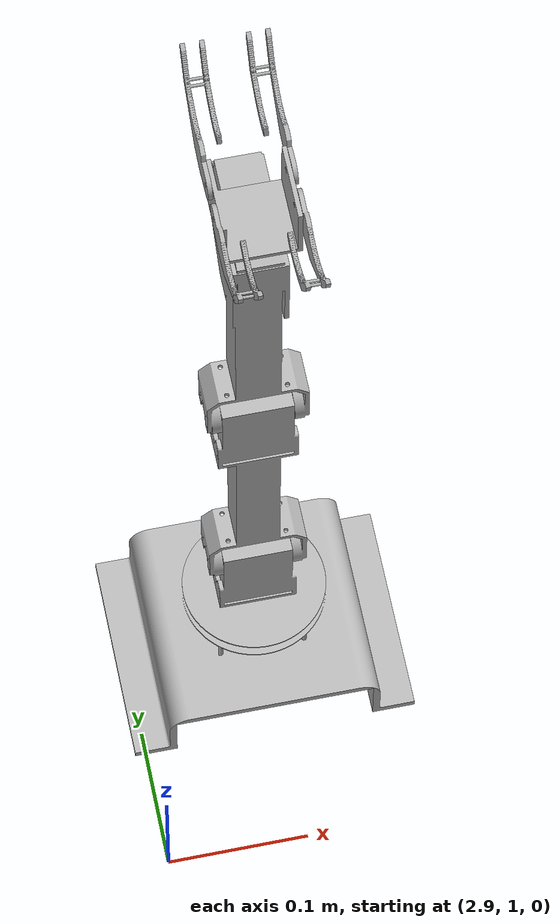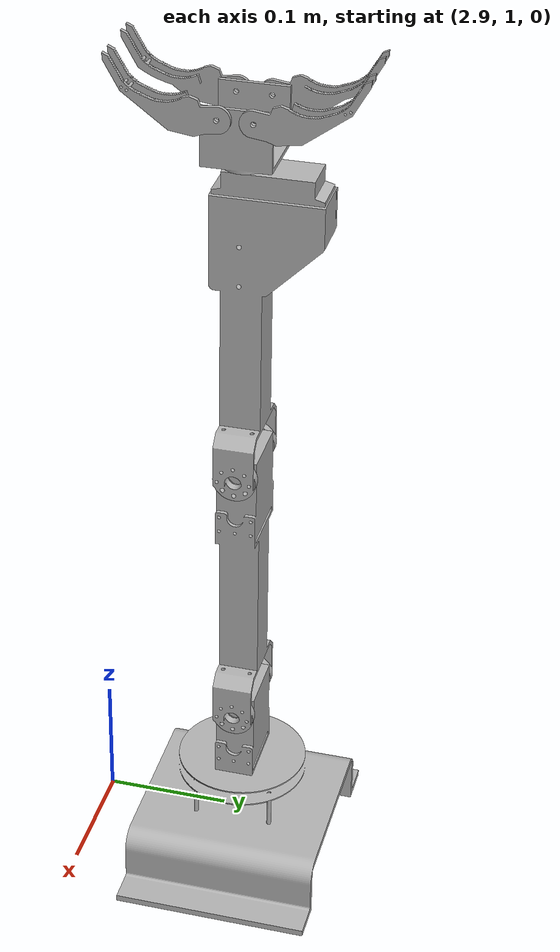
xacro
<?xml version="1.0" ?>
<robot name="robot_ver6" xmlns:xacro="http://www.ros.org/wiki/xacro">

<xacro:include filename="$(find myrobot_description)/urdf/materials.xacro" />
<xacro:include filename="$(find myrobot_description)/urdf/robot_ver6.trans" />
<xacro:include filename="$(find myrobot_description)/urdf/robot_ver6.gazebo" />
<link name="base_link">
  <inertial>
    <origin xyz="2.989375374043843 1.1395251464843752 0.07612872006595212" rpy="0 0 0"/>
    <mass value="1.6067306789990348"/>
    <inertia ixx="0.003521" iyy="0.006468" izz="0.008802" ixy="0.0" iyz="0.0" ixz="0.0"/>
  </inertial>
  <visual>
    <origin xyz="0 0 0" rpy="0 0 0"/>
    <geometry>
      <mesh filename="package://myrobot_description/meshes/base_link.stl" scale="0.001 0.001 0.001"/>
    </geometry>
    <material name="silver"/>
  </visual>
  <collision>
    <origin xyz="0 0 0" rpy="0 0 0"/>
    <geometry>
      <mesh filename="package://myrobot_description/meshes/base_link.stl" scale="0.001 0.001 0.001"/>
    </geometry>
  </collision>
</link>

<link name="link_1_1">
  <inertial>
    <origin xyz="2.079701455492966e-07 1.4648437618447474e-07 0.04484473463010137" rpy="0 0 0"/>
    <mass value="0.8724221516717876"/>
    <inertia ixx="0.000529" iyy="0.000636" izz="0.000308" ixy="-0.0" iyz="-0.0" ixz="-0.0"/>
  </inertial>
  <visual>
    <origin xyz="-2.989375 -1.139525 -0.122186" rpy="0 0 0"/>
    <geometry>
      <mesh filename="package://myrobot_description/meshes/link_1_1.stl" scale="0.001 0.001 0.001"/>
    </geometry>
    <material name="silver"/>
  </visual>
  <collision>
    <origin xyz="-2.989375 -1.139525 -0.122186" rpy="0 0 0"/>
    <geometry>
      <mesh filename="package://myrobot_description/meshes/link_1_1.stl" scale="0.001 0.001 0.001"/>
    </geometry>
  </collision>
</link>

<link name="link_2_1">
  <inertial>
    <origin xyz="2.938858791878829e-07 1.4648438195763447e-07 0.13199352594951688" rpy="0 0 0"/>
    <mass value="1.7894494256516804"/>
    <inertia ixx="0.007559" iyy="0.007762" izz="0.000473" ixy="0.0" iyz="0.0" ixz="0.0"/>
  </inertial>
  <visual>
    <origin xyz="-2.989375 -1.139525 -0.192528" rpy="0 0 0"/>
    <geometry>
      <mesh filename="package://myrobot_description/meshes/link_2_1.stl" scale="0.001 0.001 0.001"/>
    </geometry>
    <material name="silver"/>
  </visual>
  <collision>
    <origin xyz="-2.989375 -1.139525 -0.192528" rpy="0 0 0"/>
    <geometry>
      <mesh filename="package://myrobot_description/meshes/link_2_1.stl" scale="0.001 0.001 0.001"/>
    </geometry>
  </collision>
</link>

<link name="link_3_1">
  <inertial>
    <origin xyz="3.756619166850328e-07 0.008180253565493123 0.1490707247075182" rpy="0 0 0"/>
    <mass value="2.3011672222568587"/>
    <inertia ixx="0.010731" iyy="0.010238" izz="0.001122" ixy="-0.0" iyz="-0.001076" ixz="0.0"/>
  </inertial>
  <visual>
    <origin xyz="-2.989375 -1.139525 -0.40687" rpy="0 0 0"/>
    <geometry>
      <mesh filename="package://myrobot_description/meshes/link_3_1.stl" scale="0.001 0.001 0.001"/>
    </geometry>
    <material name="silver"/>
  </visual>
  <collision>
    <origin xyz="-2.989375 -1.139525 -0.40687" rpy="0 0 0"/>
    <geometry>
      <mesh filename="package://myrobot_description/meshes/link_3_1.stl" scale="0.001 0.001 0.001"/>
    </geometry>
  </collision>
</link>

<link name="link_4_1">
  <inertial>
    <origin xyz="3.7566188737514494e-07 1.4648436263975384e-07 0.018168573469312888" rpy="0 0 0"/>
    <mass value="0.1836674229836166"/>
    <inertia ixx="7.1e-05" iyy="0.000103" izz="0.0001" ixy="0.0" iyz="0.0" ixz="0.0"/>
  </inertial>
  <visual>
    <origin xyz="-2.989375 -1.138027 -0.64097" rpy="0 0 0"/>
    <geometry>
      <mesh filename="package://myrobot_description/meshes/link_4_1.stl" scale="0.001 0.001 0.001"/>
    </geometry>
    <material name="silver"/>
  </visual>
  <collision>
    <origin xyz="-2.989375 -1.138027 -0.64097" rpy="0 0 0"/>
    <geometry>
      <mesh filename="package://myrobot_description/meshes/link_4_1.stl" scale="0.001 0.001 0.001"/>
    </geometry>
  </collision>
</link>

<link name="grap_1_1">
  <inertial>
    <origin xyz="0.0011129810331476087 0.032768250662570164 0.005980783412323998" rpy="0 0 0"/>
    <mass value="0.04062678364093055"/>
    <inertia ixx="2.7e-05" iyy="6e-06" izz="2.3e-05" ixy="-2e-06" iyz="-7e-06" ixz="-1e-06"/>
  </inertial>
  <visual>
    <origin xyz="-2.964375 -1.150527 -0.68317" rpy="0 0 0"/>
    <geometry>
      <mesh filename="package://myrobot_description/meshes/grap_1_1.stl" scale="0.001 0.001 0.001"/>
    </geometry>
    <material name="silver"/>
  </visual>
  <collision>
    <origin xyz="-2.964375 -1.150527 -0.68317" rpy="0 0 0"/>
    <geometry>
      <mesh filename="package://myrobot_description/meshes/grap_1_1.stl" scale="0.001 0.001 0.001"/>
    </geometry>
  </collision>
</link>

<link name="grap_2_1">
  <inertial>
    <origin xyz="0.001112981033148941 -0.032767957693844885 0.0059807834123277726" rpy="0 0 0"/>
    <mass value="0.040626783640931016"/>
    <inertia ixx="2.7e-05" iyy="6e-06" izz="2.3e-05" ixy="2e-06" iyz="7e-06" ixz="-1e-06"/>
  </inertial>
  <visual>
    <origin xyz="-2.964375 -1.125527 -0.68317" rpy="0 0 0"/>
    <geometry>
      <mesh filename="package://myrobot_description/meshes/grap_2_1.stl" scale="0.001 0.001 0.001"/>
    </geometry>
    <material name="silver"/>
  </visual>
  <collision>
    <origin xyz="-2.964375 -1.125527 -0.68317" rpy="0 0 0"/>
    <geometry>
      <mesh filename="package://myrobot_description/meshes/grap_2_1.stl" scale="0.001 0.001 0.001"/>
    </geometry>
  </collision>
</link>

<link name="grap1_2_1">
  <inertial>
    <origin xyz="-0.0011122297093195677 0.032768250662569276 0.005980783412327106" rpy="0 0 0"/>
    <mass value="0.040626783640930565"/>
    <inertia ixx="2.7e-05" iyy="6e-06" izz="2.3e-05" ixy="2e-06" iyz="-7e-06" ixz="1e-06"/>
  </inertial>
  <visual>
    <origin xyz="-3.014375 -1.150527 -0.68317" rpy="0 0 0"/>
    <geometry>
      <mesh filename="package://myrobot_description/meshes/grap1_2_1.stl" scale="0.001 0.001 0.001"/>
    </geometry>
    <material name="silver"/>
  </visual>
  <collision>
    <origin xyz="-3.014375 -1.150527 -0.68317" rpy="0 0 0"/>
    <geometry>
      <mesh filename="package://myrobot_description/meshes/grap1_2_1.stl" scale="0.001 0.001 0.001"/>
    </geometry>
  </collision>
</link>

<link name="grap2_2_1">
  <inertial>
    <origin xyz="-0.0011122297093182354 -0.03276795769384622 0.005980783412324442" rpy="0 0 0"/>
    <mass value="0.040626783640930315"/>
    <inertia ixx="2.7e-05" iyy="6e-06" izz="2.3e-05" ixy="-2e-06" iyz="7e-06" ixz="1e-06"/>
  </inertial>
  <visual>
    <origin xyz="-3.014375 -1.125527 -0.68317" rpy="0 0 0"/>
    <geometry>
      <mesh filename="package://myrobot_description/meshes/grap2_2_1.stl" scale="0.001 0.001 0.001"/>
    </geometry>
    <material name="silver"/>
  </visual>
  <collision>
    <origin xyz="-3.014375 -1.125527 -0.68317" rpy="0 0 0"/>
    <geometry>
      <mesh filename="package://myrobot_description/meshes/grap2_2_1.stl" scale="0.001 0.001 0.001"/>
    </geometry>
  </collision>
</link>

<joint name="Revolute 1" type="continuous">
  <origin xyz="2.989375 1.139525 0.122186" rpy="0 0 0"/>
  <parent link="base_link"/>
  <child link="link_1_1"/>
  <axis xyz="0.0 0.0 1.0"/>
</joint>

<joint name="Revolute 2" type="continuous">
  <origin xyz="0.0 0.0 0.070342" rpy="0 0 0"/>
  <parent link="link_1_1"/>
  <child link="link_2_1"/>
  <axis xyz="-1.0 0.0 -0.0"/>
</joint>

<joint name="Revolute 3" type="continuous">
  <origin xyz="0.0 0.0 0.214342" rpy="0 0 0"/>
  <parent link="link_2_1"/>
  <child link="link_3_1"/>
  <axis xyz="-1.0 0.0 -0.0"/>
</joint>

<joint name="Revolute 4" type="continuous">
  <origin xyz="0.0 -0.001498 0.2341" rpy="0 0 0"/>
  <parent link="link_3_1"/>
  <child link="link_4_1"/>
  <axis xyz="-0.0 0.0 1.0"/>
</joint>

<joint name="Revolute 6" type="continuous">
  <origin xyz="-0.025 0.0125 0.0422" rpy="0 0 0"/>
  <parent link="link_4_1"/>
  <child link="grap_1_1"/>
  <axis xyz="-1.0 -0.0 -0.0"/>
</joint>

<joint name="Revolute 7" type="continuous">
  <origin xyz="-0.025 -0.0125 0.0422" rpy="0 0 0"/>
  <parent link="link_4_1"/>
  <child link="grap_2_1"/>
  <axis xyz="-1.0 -0.0 -0.0"/>
</joint>

<joint name="Revolute 8" type="continuous">
  <origin xyz="0.025 0.0125 0.0422" rpy="0 0 0"/>
  <parent link="link_4_1"/>
  <child link="grap1_2_1"/>
  <axis xyz="1.0 -0.0 0.0"/>
</joint>

<joint name="Revolute 9" type="continuous">
  <origin xyz="0.025 -0.0125 0.0422" rpy="0 0 0"/>
  <parent link="link_4_1"/>
  <child link="grap2_2_1"/>
  <axis xyz="1.0 0.0 0.0"/>
</joint>

</robot>

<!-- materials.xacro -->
<robot name="robot_ver6" xmlns:xacro="http://www.ros.org/wiki/xacro" >

<material name="silver">
  <color rgba="0.700 0.700 0.700 1.000"/>
</material>

</robot>

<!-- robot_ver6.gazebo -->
<robot name="robot_ver6" xmlns:xacro="http://www.ros.org/wiki/xacro" >

<xacro:property name="body_color" value="Gazebo/Silver" />

<gazebo>
  <plugin name="control" filename="libgazebo_ros_control.so"/>
</gazebo>
<gazebo reference="base_link">
  <material>${body_color}</material>
  <mu1>0.2</mu1>
  <mu2>0.2</mu2>
  <selfCollide>true</selfCollide>
  <gravity>true</gravity>
</gazebo>

<gazebo reference="link_1_1">
  <material>${body_color}</material>
  <mu1>0.2</mu1>
  <mu2>0.2</mu2>
  <selfCollide>true</selfCollide>
</gazebo>

<gazebo reference="link_2_1">
  <material>${body_color}</material>
  <mu1>0.2</mu1>
  <mu2>0.2</mu2>
  <selfCollide>true</selfCollide>
</gazebo>

<gazebo reference="link_3_1">
  <material>${body_color}</material>
  <mu1>0.2</mu1>
  <mu2>0.2</mu2>
  <selfCollide>true</selfCollide>
</gazebo>

<gazebo reference="link_4_1">
  <material>${body_color}</material>
  <mu1>0.2</mu1>
  <mu2>0.2</mu2>
  <selfCollide>true</selfCollide>
</gazebo>

<gazebo reference="grap_1_1">
  <material>${body_color}</material>
  <mu1>0.2</mu1>
  <mu2>0.2</mu2>
  <selfCollide>true</selfCollide>
</gazebo>

<gazebo reference="grap_2_1">
  <material>${body_color}</material>
  <mu1>0.2</mu1>
  <mu2>0.2</mu2>
  <selfCollide>true</selfCollide>
</gazebo>

<gazebo reference="grap1_2_1">
  <material>${body_color}</material>
  <mu1>0.2</mu1>
  <mu2>0.2</mu2>
  <selfCollide>true</selfCollide>
</gazebo>

<gazebo reference="grap2_2_1">
  <material>${body_color}</material>
  <mu1>0.2</mu1>
  <mu2>0.2</mu2>
  <selfCollide>true</selfCollide>
</gazebo>

</robot>
